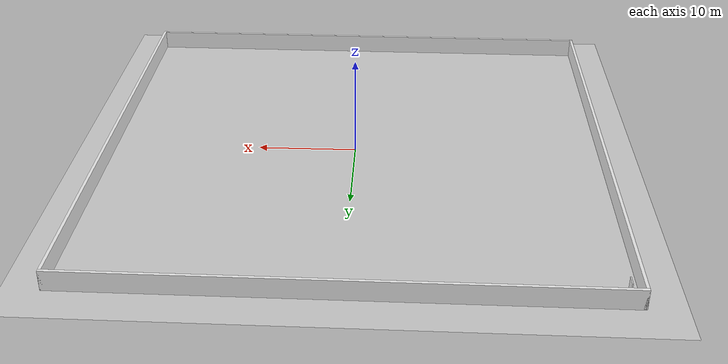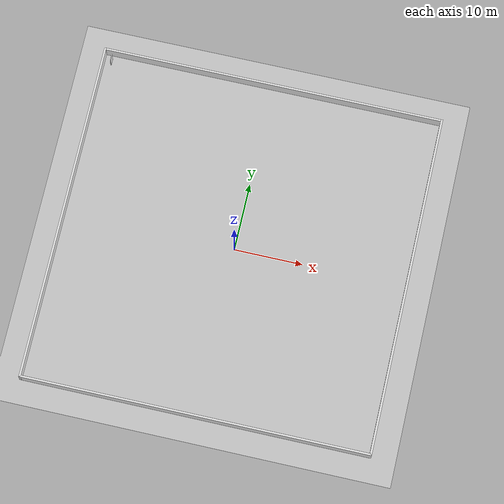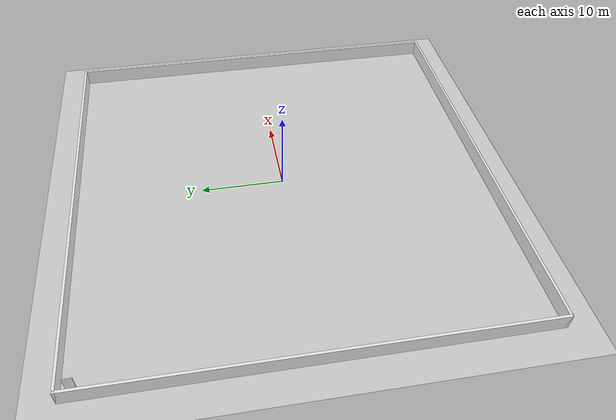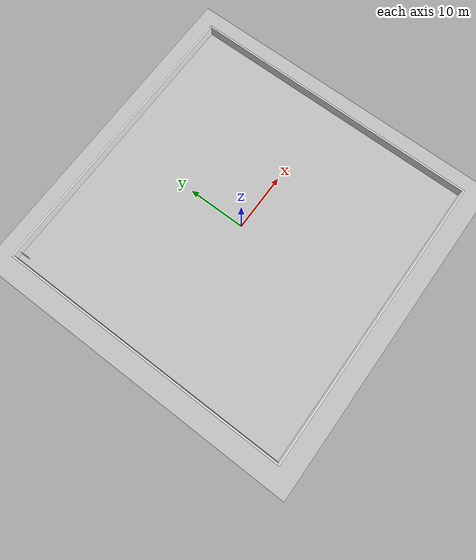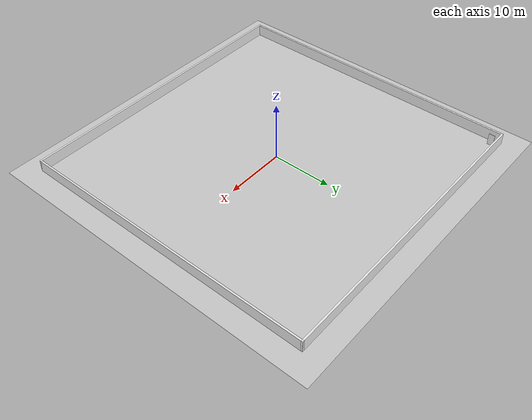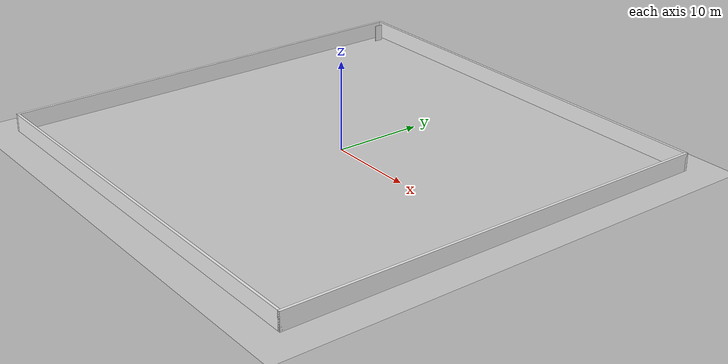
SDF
<sdf version='1.6'>
  <world name='default'>
    <light name='sun' type='directional'>
      <cast_shadows>1</cast_shadows>
      <pose frame=''>0 0 10 0 -0 0</pose>
      <diffuse>0.8 0.8 0.8 1</diffuse>
      <specular>0.2 0.2 0.2 1</specular>
      <attenuation>
        <range>1000</range>
        <constant>0.9</constant>
        <linear>0.01</linear>
        <quadratic>0.001</quadratic>
      </attenuation>
      <direction>-0.5 0.1 -0.9</direction>
    </light>
    <model name='ground_plane'>
      <static>1</static>
      <link name='link'>
        <collision name='collision'>
          <geometry>
            <plane>
              <normal>0 0 1</normal>
              <size>100 100</size>
            </plane>
          </geometry>
          <surface>
            <contact>
              <collide_bitmask>65535</collide_bitmask>
              <ode/>
            </contact>
            <friction>
              <ode>
                <mu>100</mu>
                <mu2>50</mu2>
              </ode>
              <torsional>
                <ode/>
              </torsional>
            </friction>
            <bounce/>
          </surface>
          <max_contacts>10</max_contacts>
        </collision>
        <visual name='visual'>
          <cast_shadows>0</cast_shadows>
          <geometry>
            <plane>
              <normal>0 0 1</normal>
              <size>100 100</size>
            </plane>
          </geometry>
          <material>
            <script>
              <uri>file://media/materials/scripts/gazebo.material</uri>
              <name>Gazebo/Grey</name>
            </script>
          </material>
        </visual>
        <self_collide>0</self_collide>
        <enable_wind>0</enable_wind>
        <kinematic>0</kinematic>
      </link>
    </model>
    <model name='simple_box1'>
      <static>1</static>
      <pose frame=''>0 25.15 1 0 -0 0</pose>
      <link name='link'>
        <inertial>
          <mass>1</mass>
        </inertial>
        <collision name='collision'>
          <geometry>
            <box>
              <size>50.6 0.3 2</size>
            </box>
          </geometry>
          <max_contacts>10</max_contacts>
          <surface>
            <contact>
              <ode/>
            </contact>
            <bounce/>
            <friction>
              <torsional>
                <ode/>
              </torsional>
              <ode/>
            </friction>
          </surface>
        </collision>
        <visual name='visual'>
          <geometry>
            <box>
              <size>50.6 0.3 2</size>
            </box>
          </geometry>
          <material>
            <script>
              <uri>file://media/materials/scripts/gazebo.material</uri>
              <name>Gazebo/White</name>
            </script>
          </material>
        </visual>
        <self_collide>0</self_collide>
        <enable_wind>0</enable_wind>
        <kinematic>0</kinematic>
      </link>
    </model>

    <model name='simple_box2'>
      <static>1</static>
      <pose frame=''>0 -25.15 1 0 -0 0</pose>
      <link name='link'>
        <inertial>
          <mass>1</mass>
        </inertial>
        <collision name='collision'>
          <geometry>
            <box>
              <size>50.6 0.3 2</size>
            </box>
          </geometry>
          <max_contacts>10</max_contacts>
          <surface>
            <contact>
              <ode/>
            </contact>
            <bounce/>
            <friction>
              <torsional>
                <ode/>
              </torsional>
              <ode/>
            </friction>
          </surface>
        </collision>
        <visual name='visual'>
          <geometry>
            <box>
              <size>50.6 0.3 2</size>
            </box>
          </geometry>
          <material>
            <script>
              <uri>file://media/materials/scripts/gazebo.material</uri>
              <name>Gazebo/White</name>
            </script>
          </material>
        </visual>
        <self_collide>0</self_collide>
        <enable_wind>0</enable_wind>
        <kinematic>0</kinematic>
      </link>
    </model>

    <model name='simple_box3'>
      <static>1</static>
      <pose frame=''>25.15 0 1 0 -0 1.57079633</pose>
      <link name='link'>
        <inertial>
          <mass>1</mass>
        </inertial>
        <collision name='collision'>
          <geometry>
            <box>
              <size>50.6 0.3 2</size>
            </box>
          </geometry>
          <max_contacts>10</max_contacts>
          <surface>
            <contact>
              <ode/>
            </contact>
            <bounce/>
            <friction>
              <torsional>
                <ode/>
              </torsional>
              <ode/>
            </friction>
          </surface>
        </collision>
        <visual name='visual'>
          <geometry>
            <box>
              <size>50.6 0.3 2</size>
            </box>
          </geometry>
          <material>
            <script>
              <uri>file://media/materials/scripts/gazebo.material</uri>
              <name>Gazebo/White</name>
            </script>
          </material>
        </visual>
        <self_collide>0</self_collide>
        <enable_wind>0</enable_wind>
        <kinematic>0</kinematic>
      </link>
    </model>

    <model name='simple_box4'>
      <static>1</static>
      <pose frame=''>-25.15 0 1 0 -0 1.57079633</pose>
      <link name='link'>
        <inertial>
          <mass>1</mass>
        </inertial>
        <collision name='collision'>
          <geometry>
            <box>
              <size>50.6 0.3 2</size>
            </box>
          </geometry>
          <max_contacts>10</max_contacts>
          <surface>
            <contact>
              <ode/>
            </contact>
            <bounce/>
            <friction>
              <torsional>
                <ode/>
              </torsional>
              <ode/>
            </friction>
          </surface>
        </collision>
        <visual name='visual'>
          <geometry>
            <box>
              <size>50.6 0.3 2</size>
            </box>
          </geometry>
          <material>
            <script>
              <uri>file://media/materials/scripts/gazebo.material</uri>
              <name>Gazebo/White</name>
            </script>
          </material>
        </visual>
        <self_collide>0</self_collide>
        <enable_wind>0</enable_wind>
        <kinematic>0</kinematic>
      </link>
    </model>

    <model name='simple_box'>
      <static>1</static>
      <pose frame=''>-24 24 1 0 -0 1.57079633</pose>
      <link name='link'>
        <inertial>
          <mass>1</mass>
        </inertial>
        <collision name='collision'>
          <geometry>
            <box>
              <size>1 0.1 2</size>
            </box>
          </geometry>
          <max_contacts>10</max_contacts>
          <surface>
            <contact>
              <ode/>
            </contact>
            <bounce/>
            <friction>
              <torsional>
                <ode/>
              </torsional>
              <ode/>
            </friction>
          </surface>
        </collision>
        <visual name='visual'>
          <geometry>
            <box>
              <size>1 0.1 2</size>
            </box>
          </geometry>
          <material>
            <script>
              <uri>file://media/materials/scripts/gazebo.material</uri>
              <name>Gazebo/White</name>
            </script>
          </material>
        </visual>
        <self_collide>0</self_collide>
        <enable_wind>0</enable_wind>
        <kinematic>0</kinematic>
      </link>
    </model>

  </world>
</sdf>
